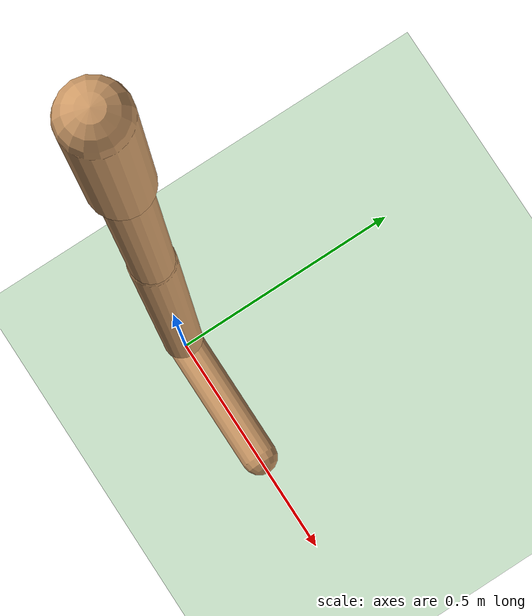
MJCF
<mujoco model="walker2d">
  <compiler angle="degree" inertiafromgeom="true" />
  <default>
    <joint armature="0.01" damping=".1" limited="true" />
    <geom conaffinity="0" condim="3" contype="1" density="1000" friction=".7 .1 .1" rgba="0.8 0.6 .4 1" />
  </default>
  <option integrator="RK4" timestep="0.002" />
  <worldbody>
    <light cutoff="100" diffuse="1 1 1" dir="-0 0 -1.3" directional="true" exponent="1" pos="0 0 1.3" specular=".1 .1 .1" />
    <geom conaffinity="1" condim="3" name="floor" pos="0 0 0" rgba="0.8 0.9 0.8 1" size="40 40 40" type="plane" material="MatPlane" />
    <body name="torso" pos="0 0 2.0088996052742005">
      <camera name="track" mode="trackcom" pos="0 -5 -1.25" xyaxes="1 0 0 0 0 1" />
      <joint armature="0" axis="1 0 0" damping="0" limited="false" name="rootx" pos="0 0 -1.25" stiffness="0" type="slide" />
      <joint armature="0" axis="0 0 1" damping="0" limited="false" name="rootz" pos="0 0 -1.25" ref="1.25" stiffness="0" type="slide" />
      <joint armature="0" axis="0 1 0" damping="0" limited="false" name="rooty" pos="0 0 0" stiffness="0" type="hinge" />
      <geom friction="0.9" name="torso_geom" size="0.04859296977519989 0.1971009373664856" type="capsule" />
      <body name="thigh" pos="0 0 -0.1971009373664856">
        <joint axis="0 -1 0" name="thigh_joint" pos="0 0 0" range="-150 0" type="hinge" />
        <site name="torso_thigh_site" pos="0 0 0" size="0.01" type="sphere" rgba="1 0 0 0.5" />
        <geom friction="0.9" pos="0 0 -0.3271492123603821" name="thigh_geom" size="0.03884023055434227 0.3271492123603821" type="capsule" />
        <body name="leg" pos="0 0 -1.1830485463142395">
          <joint axis="0 -1 0" name="leg_joint" pos="0 0 0.5287501215934753" range="-150 0" type="hinge" />
          <site name="thigh_leg_site" pos="0 0 0.25" size="0.01" type="sphere" rgba="1 0 0 0.5" />
          <geom friction="0.9" name="leg_geom" size="0.04108608141541481 0.5287501215934753" type="capsule" />
          <body name="foot" pos="0.2866002023220062 0 -0.6287501215934753">
            <joint axis="0 -1 0" name="foot_joint" pos="-0.2866002023220062 0 0.1" range="-45 45" type="hinge" />
            <site name="leg_foot_site" pos="-0.2 0 0.1" size="0.01" type="sphere" rgba="1 0 0 0.5" />
            <geom friction="0.9" pos="-0.1433001011610031 0 0.1" quat="0.70710678118654757 0 -0.70710678118654746 0" name="foot_geom" size="0.0376330241560936 0.1433001011610031" type="capsule" />
          </body>
        </body>
      </body>

      <body name="thigh_left" pos="0 0 -0.1971009373664856">
        <joint axis="0 -1 0" name="thigh_left_joint" pos="0 0 0" range="-150 0" type="hinge" />
        <site name="torso_thigh_left_site" pos="0 0 0" size="0.01" type="sphere" rgba="1 0 0 0.5" />
        <geom friction="0.9" name="thigh_left_geom" rgba=".7 .3 .6 1" size="0.03884023055434227 0.3271492123603821" pos="0 0 -0.3271492123603821" type="capsule" />
        <body name="leg_left" pos="0 0 -1.1830485463142395">
          <joint axis="0 -1 0" name="leg_left_joint" pos="0 0 0.5287501215934753" range="-150 0" type="hinge" />
          <site name="thigh_leg_left_site" pos="0 0 0.25" size="0.01" type="sphere" rgba="1 0 0 0.5" />
          <geom friction="0.9" name="leg_left_geom" rgba=".7 .3 .6 1" size="0.04108608141541481 0.5287501215934753" type="capsule" />
          <body name="foot_left" pos="0.2866002023220062 0 -0.6287501215934753">
            <joint axis="0 -1 0" name="foot_left_joint" pos="-0.2866002023220062 0 0.1" range="-45 45" type="hinge" />
            <site name="leg_foot_left_site" pos="-0.2 0 0.1" size="0.01" type="sphere" rgba="1 0 0 0.5" />
            <geom friction="1.9" name="foot_left_geom" rgba=".7 .3 .6 1" size="0.0376330241560936 0.1433001011610031" pos="-0.1433001011610031 0 0.1" type="capsule" quat="0.70710678118654757 0 -0.70710678118654746 0" />
          </body>
        </body>
      </body>
    </body>
  </worldbody>
  <actuator>

    <motor ctrllimited="true" ctrlrange="-1.0 1.0" gear="87.73784247702581" joint="thigh_joint" />
    <motor ctrllimited="true" ctrlrange="-1.0 1.0" gear="223.14128706737483" joint="leg_joint" />
    <motor ctrllimited="true" ctrlrange="-1.0 1.0" gear="56.37443920580324" joint="foot_joint" />
    <motor ctrllimited="true" ctrlrange="-1.0 1.0" gear="87.73784247702581" joint="thigh_left_joint" />
    <motor ctrllimited="true" ctrlrange="-1.0 1.0" gear="223.14128706737483" joint="leg_left_joint" />
    <motor ctrllimited="true" ctrlrange="-1.0 1.0" gear="56.37443920580324" joint="foot_left_joint" />

  </actuator>
    <asset>
        <texture type="skybox" builtin="gradient" rgb1=".4 .5 .6" rgb2="0 0 0" width="100" height="100" />
        <texture builtin="flat" height="1278" mark="cross" markrgb="1 1 1" name="texgeom" random="0.01" rgb1="0.8 0.6 0.4" rgb2="0.8 0.6 0.4" type="cube" width="127" />
        <texture builtin="checker" height="100" name="texplane" rgb1="0 0 0" rgb2="0.8 0.8 0.8" type="2d" width="100" />
        <material name="MatPlane" reflectance="0.5" shininess="1" specular="1" texrepeat="60 60" texture="texplane" />
        <material name="geom" texture="texgeom" texuniform="true" />
    </asset>

  <sensor>
    <force site="torso_thigh_site" name="torso_thigh_sensor" />
    <force site="thigh_leg_site" name="thigh_leg_sensor" />
    <force site="leg_foot_site" name="leg_foot_sensor" />
    <force site="torso_thigh_left_site" name="torso_thigh_left_sensor" />
    <force site="thigh_leg_left_site" name="thigh_leg_left_sensor" />
    <force site="leg_foot_left_site" name="leg_foot_left_sensor" />
  </sensor>
</mujoco>
